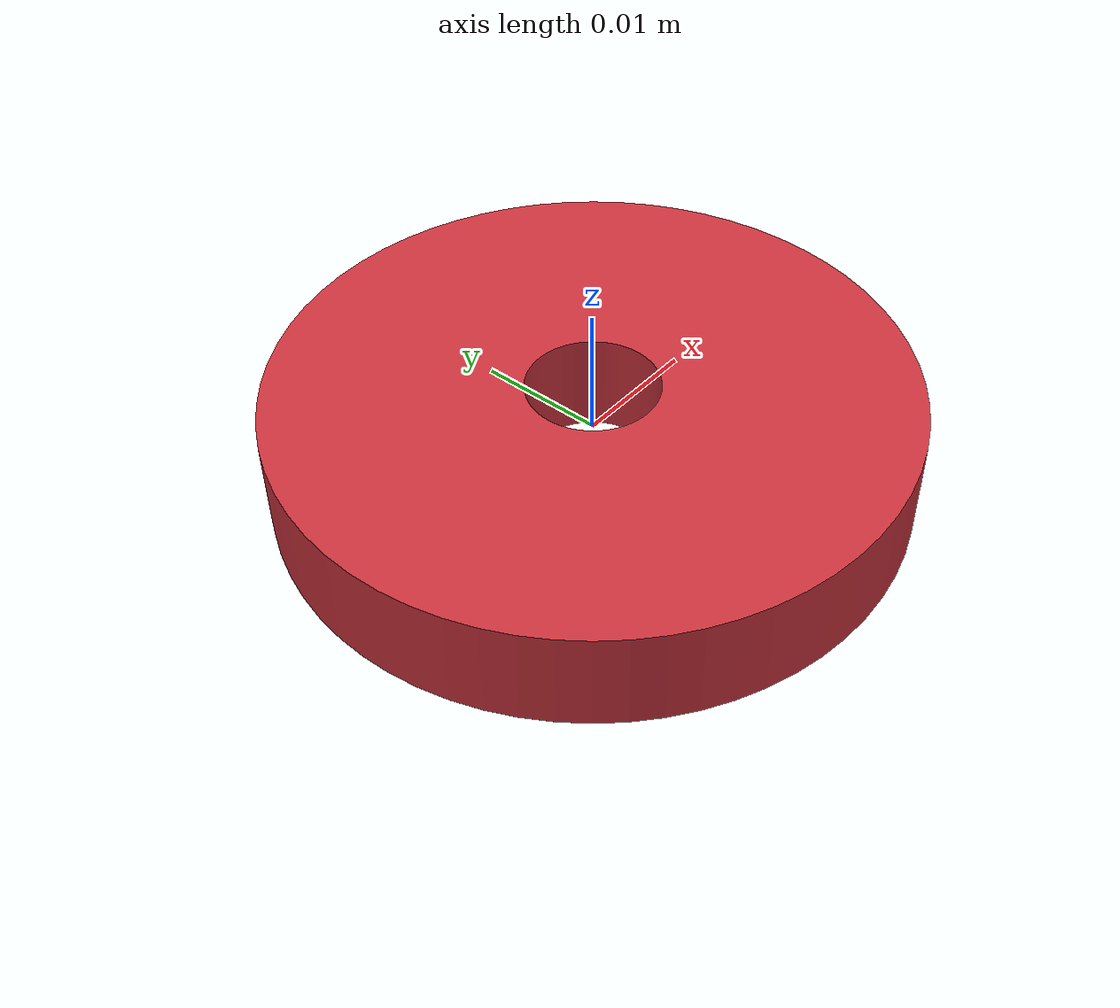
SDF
<sdf version="1.6">
  <model name="hanoi_ring_large">
    <static>false</static>
    <pose>0 0 0 0 0 0</pose>
    <link name="body">
      <inertial>
        <mass>0.02</mass>
        <inertia>
          <ixx>3.1116666666666664e-06</ixx>
          <iyy>3.1116666666666664e-06</iyy>
          <izz>6.01e-06</izz>
          <ixy>0</ixy>
          <ixz>0</ixz>
          <iyz>0</iyz>
        </inertia>
      </inertial>
      <collision name="collision_0">
        <pose>0.0145 0.0 0 0 0 0.0</pose>
        <geometry>
          <box>
            <size>0.019 0.0063193198841950005 0.008</size>
          </box>
        </geometry>
        <surface>
          <friction>
            <ode>
              <mu>0.8</mu>
              <mu2>0.8</mu2>
            </ode>
          </friction>
        </surface>
      </collision>
      <collision name="collision_1">
        <pose>0.01400592448119149 0.003752876153986551 0 0 0 0.2617993877991494</pose>
        <geometry>
          <box>
            <size>0.019 0.0063193198841950005 0.008</size>
          </box>
        </geometry>
        <surface>
          <friction>
            <ode>
              <mu>0.8</mu>
              <mu2>0.8</mu2>
            </ode>
          </friction>
        </surface>
      </collision>
      <collision name="collision_2">
        <pose>0.012557368354874362 0.0072499999999999995 0 0 0 0.5235987755982988</pose>
        <geometry>
          <box>
            <size>0.019 0.0063193198841950005 0.008</size>
          </box>
        </geometry>
        <surface>
          <friction>
            <ode>
              <mu>0.8</mu>
              <mu2>0.8</mu2>
            </ode>
          </friction>
        </surface>
      </collision>
      <collision name="collision_3">
        <pose>0.010253048327204941 0.01025304832720494 0 0 0 0.7853981633974483</pose>
        <geometry>
          <box>
            <size>0.019 0.0063193198841950005 0.008</size>
          </box>
        </geometry>
        <surface>
          <friction>
            <ode>
              <mu>0.8</mu>
              <mu2>0.8</mu2>
            </ode>
          </friction>
        </surface>
      </collision>
      <collision name="collision_4">
        <pose>0.007250000000000002 0.01255736835487436 0 0 0 1.0471975511965976</pose>
        <geometry>
          <box>
            <size>0.019 0.0063193198841950005 0.008</size>
          </box>
        </geometry>
        <surface>
          <friction>
            <ode>
              <mu>0.8</mu>
              <mu2>0.8</mu2>
            </ode>
          </friction>
        </surface>
      </collision>
      <collision name="collision_5">
        <pose>0.003752876153986551 0.01400592448119149 0 0 0 1.3089969389957472</pose>
        <geometry>
          <box>
            <size>0.019 0.0063193198841950005 0.008</size>
          </box>
        </geometry>
        <surface>
          <friction>
            <ode>
              <mu>0.8</mu>
              <mu2>0.8</mu2>
            </ode>
          </friction>
        </surface>
      </collision>
      <collision name="collision_6">
        <pose>8.87868929381831e-19 0.0145 0 0 0 1.5707963267948966</pose>
        <geometry>
          <box>
            <size>0.019 0.0063193198841950005 0.008</size>
          </box>
        </geometry>
        <surface>
          <friction>
            <ode>
              <mu>0.8</mu>
              <mu2>0.8</mu2>
            </ode>
          </friction>
        </surface>
      </collision>
      <collision name="collision_7">
        <pose>-0.0037528761539865492 0.01400592448119149 0 0 0 1.832595714594046</pose>
        <geometry>
          <box>
            <size>0.019 0.0063193198841950005 0.008</size>
          </box>
        </geometry>
        <surface>
          <friction>
            <ode>
              <mu>0.8</mu>
              <mu2>0.8</mu2>
            </ode>
          </friction>
        </surface>
      </collision>
      <collision name="collision_8">
        <pose>-0.007249999999999997 0.012557368354874362 0 0 0 2.0943951023931953</pose>
        <geometry>
          <box>
            <size>0.019 0.0063193198841950005 0.008</size>
          </box>
        </geometry>
        <surface>
          <friction>
            <ode>
              <mu>0.8</mu>
              <mu2>0.8</mu2>
            </ode>
          </friction>
        </surface>
      </collision>
      <collision name="collision_9">
        <pose>-0.01025304832720494 0.010253048327204941 0 0 0 2.356194490192345</pose>
        <geometry>
          <box>
            <size>0.019 0.0063193198841950005 0.008</size>
          </box>
        </geometry>
        <surface>
          <friction>
            <ode>
              <mu>0.8</mu>
              <mu2>0.8</mu2>
            </ode>
          </friction>
        </surface>
      </collision>
      <collision name="collision_10">
        <pose>-0.012557368354874362 0.0072499999999999995 0 0 0 2.6179938779914944</pose>
        <geometry>
          <box>
            <size>0.019 0.0063193198841950005 0.008</size>
          </box>
        </geometry>
        <surface>
          <friction>
            <ode>
              <mu>0.8</mu>
              <mu2>0.8</mu2>
            </ode>
          </friction>
        </surface>
      </collision>
      <collision name="collision_11">
        <pose>-0.014005924481191489 0.003752876153986555 0 0 0 2.8797932657906435</pose>
        <geometry>
          <box>
            <size>0.019 0.0063193198841950005 0.008</size>
          </box>
        </geometry>
        <surface>
          <friction>
            <ode>
              <mu>0.8</mu>
              <mu2>0.8</mu2>
            </ode>
          </friction>
        </surface>
      </collision>
      <collision name="collision_12">
        <pose>-0.0145 1.775737858763662e-18 0 0 0 3.141592653589793</pose>
        <geometry>
          <box>
            <size>0.019 0.0063193198841950005 0.008</size>
          </box>
        </geometry>
        <surface>
          <friction>
            <ode>
              <mu>0.8</mu>
              <mu2>0.8</mu2>
            </ode>
          </friction>
        </surface>
      </collision>
      <collision name="collision_13">
        <pose>-0.01400592448119149 -0.003752876153986552 0 0 0 3.4033920413889427</pose>
        <geometry>
          <box>
            <size>0.019 0.0063193198841950005 0.008</size>
          </box>
        </geometry>
        <surface>
          <friction>
            <ode>
              <mu>0.8</mu>
              <mu2>0.8</mu2>
            </ode>
          </friction>
        </surface>
      </collision>
      <collision name="collision_14">
        <pose>-0.012557368354874364 -0.007249999999999996 0 0 0 3.665191429188092</pose>
        <geometry>
          <box>
            <size>0.019 0.0063193198841950005 0.008</size>
          </box>
        </geometry>
        <surface>
          <friction>
            <ode>
              <mu>0.8</mu>
              <mu2>0.8</mu2>
            </ode>
          </friction>
        </surface>
      </collision>
      <collision name="collision_15">
        <pose>-0.010253048327204944 -0.010253048327204934 0 0 0 3.926990816987241</pose>
        <geometry>
          <box>
            <size>0.019 0.0063193198841950005 0.008</size>
          </box>
        </geometry>
        <surface>
          <friction>
            <ode>
              <mu>0.8</mu>
              <mu2>0.8</mu2>
            </ode>
          </friction>
        </surface>
      </collision>
      <collision name="collision_16">
        <pose>-0.0072500000000000064 -0.012557368354874357 0 0 0 4.1887902047863905</pose>
        <geometry>
          <box>
            <size>0.019 0.0063193198841950005 0.008</size>
          </box>
        </geometry>
        <surface>
          <friction>
            <ode>
              <mu>0.8</mu>
              <mu2>0.8</mu2>
            </ode>
          </friction>
        </surface>
      </collision>
      <collision name="collision_17">
        <pose>-0.0037528761539865492 -0.01400592448119149 0 0 0 4.4505895925855405</pose>
        <geometry>
          <box>
            <size>0.019 0.0063193198841950005 0.008</size>
          </box>
        </geometry>
        <surface>
          <friction>
            <ode>
              <mu>0.8</mu>
              <mu2>0.8</mu2>
            </ode>
          </friction>
        </surface>
      </collision>
      <collision name="collision_18">
        <pose>-2.663606788145493e-18 -0.0145 0 0 0 4.71238898038469</pose>
        <geometry>
          <box>
            <size>0.019 0.0063193198841950005 0.008</size>
          </box>
        </geometry>
        <surface>
          <friction>
            <ode>
              <mu>0.8</mu>
              <mu2>0.8</mu2>
            </ode>
          </friction>
        </surface>
      </collision>
      <collision name="collision_19">
        <pose>0.0037528761539865445 -0.014005924481191492 0 0 0 4.974188368183839</pose>
        <geometry>
          <box>
            <size>0.019 0.0063193198841950005 0.008</size>
          </box>
        </geometry>
        <surface>
          <friction>
            <ode>
              <mu>0.8</mu>
              <mu2>0.8</mu2>
            </ode>
          </friction>
        </surface>
      </collision>
      <collision name="collision_20">
        <pose>0.007250000000000002 -0.01255736835487436 0 0 0 5.235987755982989</pose>
        <geometry>
          <box>
            <size>0.019 0.0063193198841950005 0.008</size>
          </box>
        </geometry>
        <surface>
          <friction>
            <ode>
              <mu>0.8</mu>
              <mu2>0.8</mu2>
            </ode>
          </friction>
        </surface>
      </collision>
      <collision name="collision_21">
        <pose>0.010253048327204937 -0.010253048327204943 0 0 0 5.497787143782138</pose>
        <geometry>
          <box>
            <size>0.019 0.0063193198841950005 0.008</size>
          </box>
        </geometry>
        <surface>
          <friction>
            <ode>
              <mu>0.8</mu>
              <mu2>0.8</mu2>
            </ode>
          </friction>
        </surface>
      </collision>
      <collision name="collision_22">
        <pose>0.012557368354874357 -0.0072500000000000064 0 0 0 5.759586531581287</pose>
        <geometry>
          <box>
            <size>0.019 0.0063193198841950005 0.008</size>
          </box>
        </geometry>
        <surface>
          <friction>
            <ode>
              <mu>0.8</mu>
              <mu2>0.8</mu2>
            </ode>
          </friction>
        </surface>
      </collision>
      <collision name="collision_23">
        <pose>0.014005924481191487 -0.003752876153986563 0 0 0 6.021385919380436</pose>
        <geometry>
          <box>
            <size>0.019 0.0063193198841950005 0.008</size>
          </box>
        </geometry>
        <surface>
          <friction>
            <ode>
              <mu>0.8</mu>
              <mu2>0.8</mu2>
            </ode>
          </friction>
        </surface>
      </collision>
      <visual name="ring_visual">
        <geometry>
          <mesh>
            <uri>model://hanoi_ring_large/meshes/ring.stl</uri>
          </mesh>
        </geometry>
        <material>
          <ambient>0.8 0.2 0.24 1</ambient>
          <diffuse>0.8 0.2 0.24 1</diffuse>
        </material>
      </visual>
    </link>
  </model>
</sdf>
